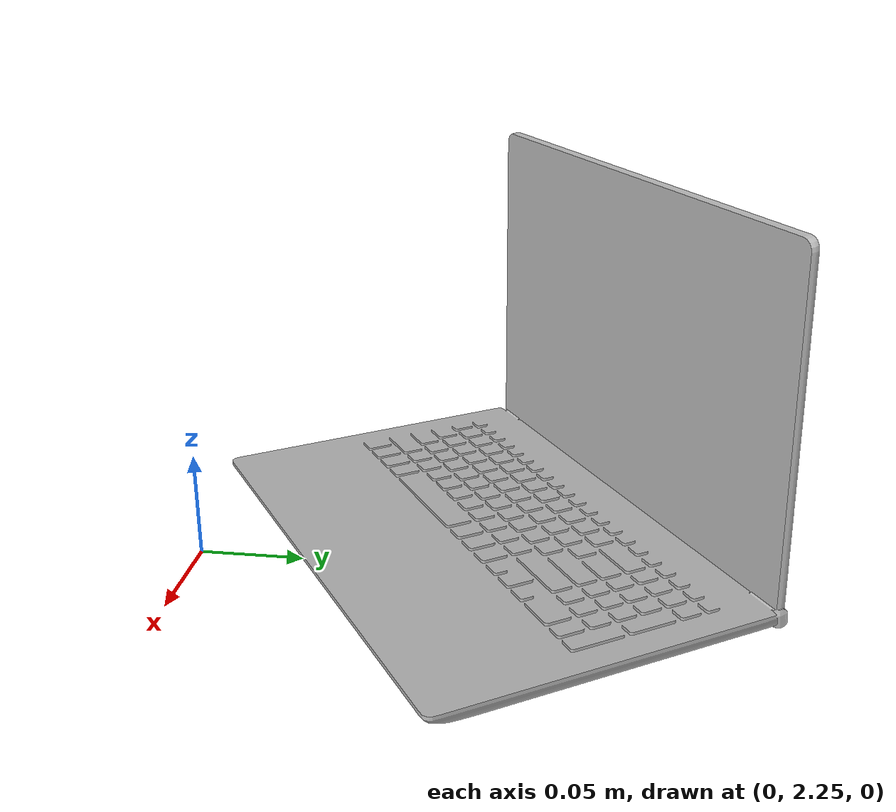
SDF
<?xml version="1.0" ?>
<sdf version="1.5">
  <model name="laptop" static="true">
    <link name="laptop_link">
      <inertial>
        <pose>0.0 0.0 0.0 0.0 0.0 0.0 </pose>
        <mass value="5.0"/>
        <inertia>
          <ixx>0.0</ixx>
          <ixy>0.0</ixy>
          <ixz>0.0</ixz>
          <iyy>0.0</iyy>
          <iyz>0.0</iyz>
          <izz>0.0</izz>
        </inertia>
      </inertial>
      <collision name="laptop_collision" cast_shadows="false">
          <geometry>
              <mesh >
                <uri>model://laptop/meshes/laptop.dae</uri>
              </mesh>
          </geometry>
      </collision>
      <visual name="laptop_visual" cast_shadows="false">
          <geometry>
            <mesh>
              <uri>model://laptop/meshes/laptop.dae</uri>
            </mesh>
          </geometry>
      </visual>
  </link>
  </model>
</sdf>
